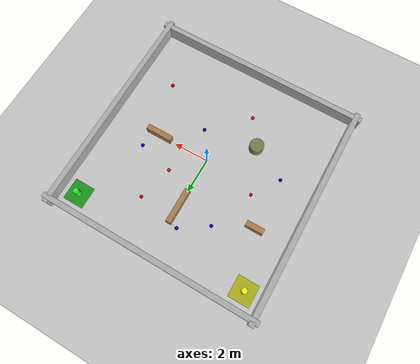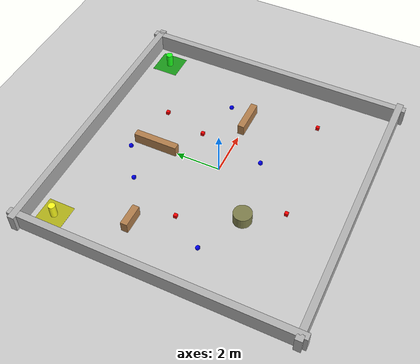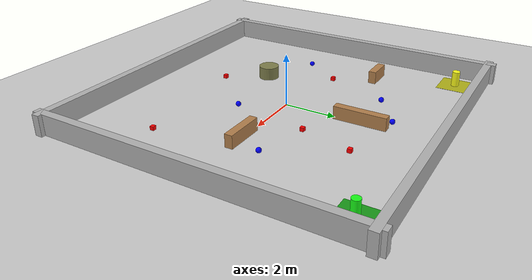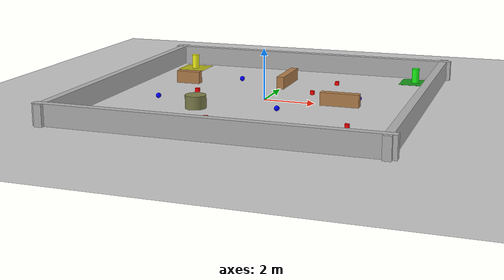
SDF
<?xml version="1.0" ?>
<sdf version="1.6">
  <world name="arena">

    <include><uri>model://ground_plane</uri></include>
    <include><uri>model://sun</uri></include>

    <physics type="ode">
      <max_step_size>0.001</max_step_size>
      <real_time_factor>1</real_time_factor>
      <real_time_update_rate>1000</real_time_update_rate>
    </physics>

    <!-- ==================== BOUNDARY WALLS (12x12) ==================== -->
    <model name="wall_north"><static>true</static>
      <link name="link">
        <collision name="c"><geometry><box><size>12.6 0.3 0.8</size></box></geometry></collision>
        <visual name="v"><geometry><box><size>12.6 0.3 0.8</size></box></geometry>
          <material><ambient>0.5 0.5 0.5 1</ambient><diffuse>0.7 0.7 0.7 1</diffuse></material>
        </visual>
      </link>
      <pose>0 6 0.4 0 0 0</pose>
    </model>
    <model name="wall_south"><static>true</static>
      <link name="link">
        <collision name="c"><geometry><box><size>12.6 0.3 0.8</size></box></geometry></collision>
        <visual name="v"><geometry><box><size>12.6 0.3 0.8</size></box></geometry>
          <material><ambient>0.5 0.5 0.5 1</ambient><diffuse>0.7 0.7 0.7 1</diffuse></material>
        </visual>
      </link>
      <pose>0 -6 0.4 0 0 0</pose>
    </model>
    <model name="wall_east"><static>true</static>
      <link name="link">
        <collision name="c"><geometry><box><size>0.3 12.6 0.8</size></box></geometry></collision>
        <visual name="v"><geometry><box><size>0.3 12.6 0.8</size></box></geometry>
          <material><ambient>0.5 0.5 0.5 1</ambient><diffuse>0.7 0.7 0.7 1</diffuse></material>
        </visual>
      </link>
      <pose>6 0 0.4 0 0 0</pose>
    </model>
    <model name="wall_west"><static>true</static>
      <link name="link">
        <collision name="c"><geometry><box><size>0.3 12.6 0.8</size></box></geometry></collision>
        <visual name="v"><geometry><box><size>0.3 12.6 0.8</size></box></geometry>
          <material><ambient>0.5 0.5 0.5 1</ambient><diffuse>0.7 0.7 0.7 1</diffuse></material>
        </visual>
      </link>
      <pose>-6 0 0.4 0 0 0</pose>
    </model>

    <!-- ==================== OBSTACLES ==================== -->
    <model name="obs_box_1"><static>true</static>
      <link name="link">
        <collision name="c"><geometry><box><size>1.5 0.3 0.5</size></box></geometry></collision>
        <visual name="v"><geometry><box><size>1.5 0.3 0.5</size></box></geometry>
          <material><ambient>0.6 0.4 0.2 1</ambient><diffuse>0.7 0.5 0.3 1</diffuse></material>
        </visual>
      </link>
      <pose>3 0 0.25 0 0 0</pose>
    </model>

    <model name="obs_cyl_1"><static>true</static>
      <link name="link">
        <collision name="c"><geometry><cylinder><radius>0.4</radius><length>0.5</length></cylinder></geometry></collision>
        <visual name="v"><geometry><cylinder><radius>0.4</radius><length>0.5</length></cylinder></geometry>
          <material><ambient>0.4 0.4 0.2 1</ambient><diffuse>0.5 0.5 0.3 1</diffuse></material>
        </visual>
      </link>
      <pose>-2 -2 0.25 0 0 0</pose>
    </model>

    <model name="obs_box_2"><static>true</static>
      <link name="link">
        <collision name="c"><geometry><box><size>0.3 2.0 0.5</size></box></geometry></collision>
        <visual name="v"><geometry><box><size>0.3 2.0 0.5</size></box></geometry>
          <material><ambient>0.6 0.4 0.2 1</ambient><diffuse>0.7 0.5 0.3 1</diffuse></material>
        </visual>
      </link>
      <pose>0 3 0.25 0 0 0</pose>
    </model>

    <model name="obs_box_3"><static>true</static>
      <link name="link">
        <collision name="c"><geometry><box><size>1.0 0.3 0.5</size></box></geometry></collision>
        <visual name="v"><geometry><box><size>1.0 0.3 0.5</size></box></geometry>
          <material><ambient>0.6 0.4 0.2 1</ambient><diffuse>0.7 0.5 0.3 1</diffuse></material>
        </visual>
      </link>
      <pose>-4 2 0.25 0 0 0</pose>
    </model>

    <!-- ==================== RED CUBES (0.15m) ==================== -->
    <model name="cube_1"><static>true</static>
      <link name="link">
        <collision name="c"><geometry><box><size>0.15 0.15 0.15</size></box></geometry></collision>
        <visual name="v"><geometry><box><size>0.15 0.15 0.15</size></box></geometry>
          <material><ambient>0.9 0.0 0.0 1</ambient><diffuse>1.0 0.0 0.0 1</diffuse></material>
        </visual>
      </link>
      <pose>1.5 1.5 0.075 0 0 0</pose>
    </model>
    <model name="cube_2"><static>true</static>
      <link name="link">
        <collision name="c"><geometry><box><size>0.15 0.15 0.15</size></box></geometry></collision>
        <visual name="v"><geometry><box><size>0.15 0.15 0.15</size></box></geometry>
          <material><ambient>0.9 0.0 0.0 1</ambient><diffuse>1.0 0.0 0.0 1</diffuse></material>
        </visual>
      </link>
      <pose>-3.0 0.5 0.075 0 0 0</pose>
    </model>
    <model name="cube_3"><static>true</static>
      <link name="link">
        <collision name="c"><geometry><box><size>0.15 0.15 0.15</size></box></geometry></collision>
        <visual name="v"><geometry><box><size>0.15 0.15 0.15</size></box></geometry>
          <material><ambient>0.9 0.0 0.0 1</ambient><diffuse>1.0 0.0 0.0 1</diffuse></material>
        </visual>
      </link>
      <pose>4.0 -3.0 0.075 0 0 0</pose>
    </model>
    <model name="cube_4"><static>true</static>
      <link name="link">
        <collision name="c"><geometry><box><size>0.15 0.15 0.15</size></box></geometry></collision>
        <visual name="v"><geometry><box><size>0.15 0.15 0.15</size></box></geometry>
          <material><ambient>0.9 0.0 0.0 1</ambient><diffuse>1.0 0.0 0.0 1</diffuse></material>
        </visual>
      </link>
      <pose>-1.0 -3.5 0.075 0 0 0</pose>
    </model>
    <model name="cube_5"><static>true</static>
      <link name="link">
        <collision name="c"><geometry><box><size>0.15 0.15 0.15</size></box></geometry></collision>
        <visual name="v"><geometry><box><size>0.15 0.15 0.15</size></box></geometry>
          <material><ambient>0.9 0.0 0.0 1</ambient><diffuse>1.0 0.0 0.0 1</diffuse></material>
        </visual>
      </link>
      <pose>2.0 3.5 0.075 0 0 0</pose>
    </model>

    <!-- ==================== BLUE SPHERES (r=0.10) ==================== -->
    <model name="sphere_1"><static>true</static>
      <link name="link">
        <collision name="c"><geometry><sphere><radius>0.10</radius></sphere></geometry></collision>
        <visual name="v"><geometry><sphere><radius>0.10</radius></sphere></geometry>
          <material><ambient>0.0 0.0 0.9 1</ambient><diffuse>0.0 0.0 1.0 1</diffuse></material>
        </visual>
      </link>
      <pose>-2.0 3.0 0.10 0 0 0</pose>
    </model>
    <model name="sphere_2"><static>true</static>
      <link name="link">
        <collision name="c"><geometry><sphere><radius>0.10</radius></sphere></geometry></collision>
        <visual name="v"><geometry><sphere><radius>0.10</radius></sphere></geometry>
          <material><ambient>0.0 0.0 0.9 1</ambient><diffuse>0.0 0.0 1.0 1</diffuse></material>
        </visual>
      </link>
      <pose>1.0 -1.5 0.10 0 0 0</pose>
    </model>
    <model name="sphere_3"><static>true</static>
      <link name="link">
        <collision name="c"><geometry><sphere><radius>0.10</radius></sphere></geometry></collision>
        <visual name="v"><geometry><sphere><radius>0.10</radius></sphere></geometry>
          <material><ambient>0.0 0.0 0.9 1</ambient><diffuse>0.0 0.0 1.0 1</diffuse></material>
        </visual>
      </link>
      <pose>-4.0 -1.0 0.10 0 0 0</pose>
    </model>
    <model name="sphere_4"><static>true</static>
      <link name="link">
        <collision name="c"><geometry><sphere><radius>0.10</radius></sphere></geometry></collision>
        <visual name="v"><geometry><sphere><radius>0.10</radius></sphere></geometry>
          <material><ambient>0.0 0.0 0.9 1</ambient><diffuse>0.0 0.0 1.0 1</diffuse></material>
        </visual>
      </link>
      <pose>3.5 1.0 0.10 0 0 0</pose>
    </model>
    <model name="sphere_5"><static>true</static>
      <link name="link">
        <collision name="c"><geometry><sphere><radius>0.10</radius></sphere></geometry></collision>
        <visual name="v"><geometry><sphere><radius>0.10</radius></sphere></geometry>
          <material><ambient>0.0 0.0 0.9 1</ambient><diffuse>0.0 0.0 1.0 1</diffuse></material>
        </visual>
      </link>
      <pose>-0.5 4.0 0.10 0 0 0</pose>
    </model>

    <!-- ==================== BASKET MARKERS ==================== -->
    <!-- Cube basket (GREEN pole) at (5, 5) -->
    <model name="basket_cube_marker"><static>true</static>
      <link name="link">
        <collision name="c"><geometry><cylinder><radius>0.15</radius><length>0.6</length></cylinder></geometry></collision>
        <visual name="v"><geometry><cylinder><radius>0.15</radius><length>0.6</length></cylinder></geometry>
          <material><ambient>0.0 0.8 0.0 1</ambient><diffuse>0.1 1.0 0.1 1</diffuse></material>
        </visual>
      </link>
      <pose>5 5 0.3 0 0 0</pose>
    </model>
    <!-- Cube basket floor patch -->
    <model name="basket_cube_floor"><static>true</static>
      <link name="link">
        <visual name="v"><geometry><box><size>1.2 1.2 0.005</size></box></geometry>
          <material><ambient>0.0 0.5 0.0 1</ambient><diffuse>0.1 0.6 0.1 1</diffuse></material>
        </visual>
      </link>
      <pose>5 5 0.003 0 0 0</pose>
    </model>

    <!-- Sphere basket (YELLOW pole) at (-5, 5) -->
    <model name="basket_sphere_marker"><static>true</static>
      <link name="link">
        <collision name="c"><geometry><cylinder><radius>0.15</radius><length>0.6</length></cylinder></geometry></collision>
        <visual name="v"><geometry><cylinder><radius>0.15</radius><length>0.6</length></cylinder></geometry>
          <material><ambient>0.9 0.9 0.0 1</ambient><diffuse>1.0 1.0 0.1 1</diffuse></material>
        </visual>
      </link>
      <pose>-5 5 0.3 0 0 0</pose>
    </model>
    <!-- Sphere basket floor patch -->
    <model name="basket_sphere_floor"><static>true</static>
      <link name="link">
        <visual name="v"><geometry><box><size>1.2 1.2 0.005</size></box></geometry>
          <material><ambient>0.6 0.6 0.0 1</ambient><diffuse>0.7 0.7 0.1 1</diffuse></material>
        </visual>
      </link>
      <pose>-5 5 0.003 0 0 0</pose>
    </model>

  </world>
</sdf>
